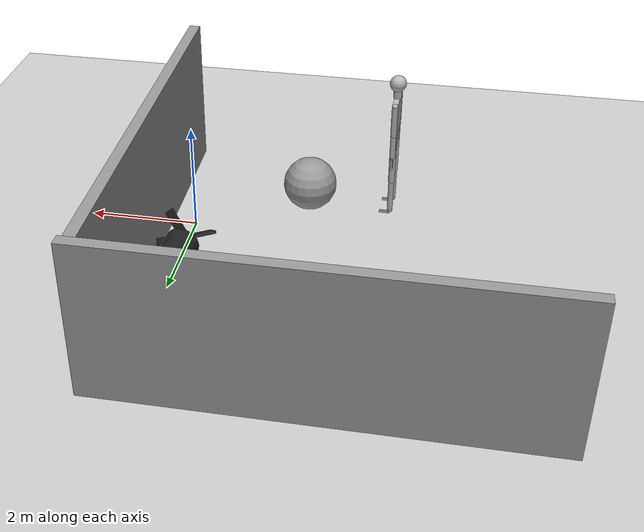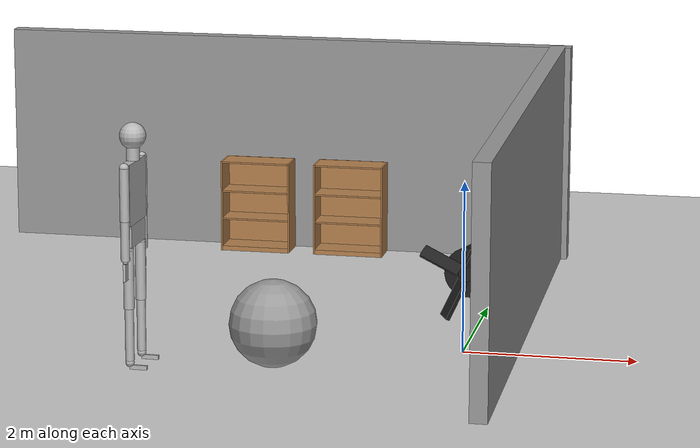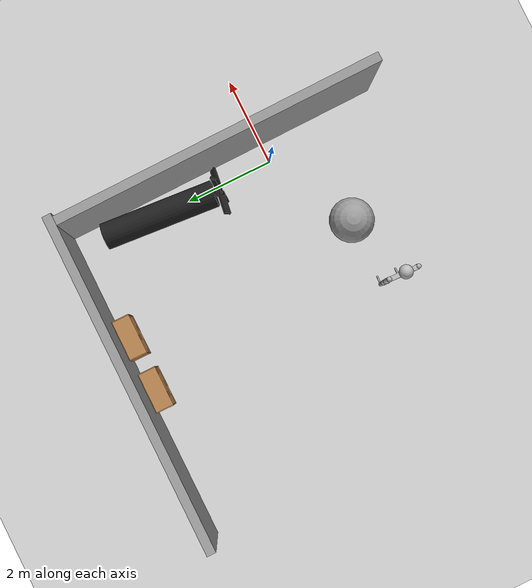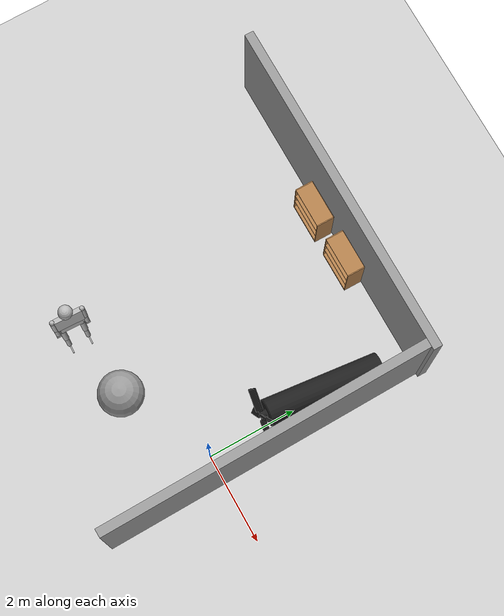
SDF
<sdf version="1.6">
 <world name="default">
  <model name="ground_plane">
   <static>1</static>
   <link name="link">
    <collision name="collision">
     <geometry><plane><normal>0 0 1</normal><size>100 100</size></plane></geometry>
     <surface>
      <contact><collide_bitmask>65535</collide_bitmask></contact>
      <friction><ode><mu>100</mu><mu2>50</mu2></ode></friction>
     </surface>
    </collision>
    <visual name="visual">
     <cast_shadows>0</cast_shadows>
     <geometry><plane><normal>0 0 1</normal><size>100 100</size></plane></geometry>
     <material>
      <script><uri>file://media/materials/scripts/gazebo.material</uri><name>Gazebo/Grey</name></script>
     </material>
    </visual>
   </link>
  </model>
  <model name="grey_wall">
   <static>1</static>
   <link name="link">
    <pose>0 0 1.4 0 -0 0</pose>
    <collision name="collision"><geometry><box><size>7.5 0.2 2.8</size></box></geometry></collision>
    <visual name="visual">
     <cast_shadows>0</cast_shadows>
     <geometry><box><size>7.5 0.2 2.8</size></box></geometry>
     <material>
      <script>
       <uri>model://grey_wall/materials/scripts</uri>
       <uri>model://grey_wall/materials/textures</uri>
       <name>vrc/grey_wall</name>
      </script>
     </material>
    </visual>
   </link>
   <pose>-3.09863 4.75132 0 0 -0 0</pose>
  </model>
  <model name="grey_wall_0_clone">
   <static>1</static>
   <link name="link">
    <pose>0 0 1.4 0 -0 0</pose>
    <collision name="collision"><geometry><box><size>7.5 0.2 2.8</size></box></geometry></collision>
    <visual name="visual">
     <cast_shadows>0</cast_shadows>
     <geometry><box><size>7.5 0.2 2.8</size></box></geometry>
     <material>
      <script>
       <uri>model://grey_wall/materials/scripts</uri>
       <uri>model://grey_wall/materials/textures</uri>
       <name>vrc/grey_wall</name>
      </script>
     </material>
    </visual>
   </link>
   <pose>0.526199 1.0684 0 0 0 -1.55661</pose>
  </model>
  <model name="bookshelf_1">
   <static>1</static>
   <link name="link">
    <inertial><mass>1</mass></inertial>
    <collision name="back">
     <pose>0 0.005 0.6 0 -0 0</pose>
     <geometry><box><size>0.9 0.01 1.2</size></box></geometry>
    </collision>
    <visual name="visual1">
     <pose>0 0.005 0.6 0 -0 0</pose>
     <geometry><box><size>0.9 0.01 1.2</size></box></geometry>
     <material>
      <script><uri>file://media/materials/scripts/gazebo.material</uri><name>Gazebo/Wood</name></script>
     </material>
    </visual>
    <collision name="left_side">
     <pose>0.45 -0.195 0.6 0 -0 0</pose>
     <geometry><box><size>0.02 0.4 1.2</size></box></geometry>
    </collision>
    <visual name="visual2">
     <pose>0.45 -0.195 0.6 0 -0 0</pose>
     <geometry><box><size>0.02 0.4 1.2</size></box></geometry>
     <material>
      <script><uri>file://media/materials/scripts/gazebo.material</uri><name>Gazebo/Wood</name></script>
     </material>
    </visual>
    <collision name="right_side">
     <pose>-0.45 -0.195 0.6 0 -0 0</pose>
     <geometry><box><size>0.02 0.4 1.2</size></box></geometry>
    </collision>
    <visual name="visual3">
     <pose>-0.45 -0.195 0.6 0 -0 0</pose>
     <geometry><box><size>0.02 0.4 1.2</size></box></geometry>
     <material>
      <script><uri>file://media/materials/scripts/gazebo.material</uri><name>Gazebo/Wood</name></script>
     </material>
    </visual>
    <collision name="bottom">
     <pose>0 -0.195 0.03 0 -0 0</pose>
     <geometry><box><size>0.88 0.4 0.06</size></box></geometry>
    </collision>
    <visual name="visual4">
     <pose>0 -0.195 0.03 0 -0 0</pose>
     <geometry><box><size>0.88 0.4 0.06</size></box></geometry>
     <material>
      <script><uri>file://media/materials/scripts/gazebo.material</uri><name>Gazebo/Wood</name></script>
     </material>
    </visual>
    <collision name="top">
     <pose>0 -0.195 1.19 0 -0 0</pose>
     <geometry><box><size>0.88 0.4 0.02</size></box></geometry>
    </collision>
    <visual name="visual5">
     <pose>0 -0.195 1.19 0 -0 0</pose>
     <geometry><box><size>0.88 0.4 0.02</size></box></geometry>
     <material>
      <script><uri>file://media/materials/scripts/gazebo.material</uri><name>Gazebo/Wood</name></script>
     </material>
    </visual>
    <collision name="low_shelf">
     <pose>0 -0.195 0.43 0 -0 0</pose>
     <geometry><box><size>0.88 0.4 0.02</size></box></geometry>
    </collision>
    <visual name="visual6">
     <pose>0 -0.195 0.43 0 -0 0</pose>
     <geometry><box><size>0.88 0.4 0.02</size></box></geometry>
     <material>
      <script><uri>file://media/materials/scripts/gazebo.material</uri><name>Gazebo/Wood</name></script>
     </material>
    </visual>
    <collision name="high_shelf">
     <pose>0 -0.195 0.8 0 -0 0</pose>
     <geometry><box><size>0.88 0.4 0.02</size></box></geometry>
    </collision>
    <visual name="visual7">
     <pose>0 -0.195 0.8 0 -0 0</pose>
     <geometry><box><size>0.88 0.4 0.02</size></box></geometry>
     <material>
      <script><uri>file://media/materials/scripts/gazebo.material</uri><name>Gazebo/Wood</name></script>
     </material>
    </visual>
   </link>
   <pose>-3.43568 4.62036 0 0 -0 0</pose>
  </model>
  <model name="bookshelf_2">
   <static>1</static>
   <link name="link">
    <inertial><mass>1</mass></inertial>
    <collision name="back">
     <pose>0 0.005 0.6 0 -0 0</pose>
     <geometry><box><size>0.9 0.01 1.2</size></box></geometry>
    </collision>
    <visual name="visual1">
     <pose>0 0.005 0.6 0 -0 0</pose>
     <geometry><box><size>0.9 0.01 1.2</size></box></geometry>
     <material>
      <script><uri>file://media/materials/scripts/gazebo.material</uri><name>Gazebo/Wood</name></script>
     </material>
    </visual>
    <collision name="left_side">
     <pose>0.45 -0.195 0.6 0 -0 0</pose>
     <geometry><box><size>0.02 0.4 1.2</size></box></geometry>
    </collision>
    <visual name="visual2">
     <pose>0.45 -0.195 0.6 0 -0 0</pose>
     <geometry><box><size>0.02 0.4 1.2</size></box></geometry>
     <material>
      <script><uri>file://media/materials/scripts/gazebo.material</uri><name>Gazebo/Wood</name></script>
     </material>
    </visual>
    <collision name="right_side">
     <pose>-0.45 -0.195 0.6 0 -0 0</pose>
     <geometry><box><size>0.02 0.4 1.2</size></box></geometry>
    </collision>
    <visual name="visual3">
     <pose>-0.45 -0.195 0.6 0 -0 0</pose>
     <geometry><box><size>0.02 0.4 1.2</size></box></geometry>
     <material>
      <script><uri>file://media/materials/scripts/gazebo.material</uri><name>Gazebo/Wood</name></script>
     </material>
    </visual>
    <collision name="bottom">
     <pose>0 -0.195 0.03 0 -0 0</pose>
     <geometry><box><size>0.88 0.4 0.06</size></box></geometry>
    </collision>
    <visual name="visual4">
     <pose>0 -0.195 0.03 0 -0 0</pose>
     <geometry><box><size>0.88 0.4 0.06</size></box></geometry>
     <material>
      <script><uri>file://media/materials/scripts/gazebo.material</uri><name>Gazebo/Wood</name></script>
     </material>
    </visual>
    <collision name="top">
     <pose>0 -0.195 1.19 0 -0 0</pose>
     <geometry><box><size>0.88 0.4 0.02</size></box></geometry>
    </collision>
    <visual name="visual5">
     <pose>0 -0.195 1.19 0 -0 0</pose>
     <geometry><box><size>0.88 0.4 0.02</size></box></geometry>
     <material>
      <script><uri>file://media/materials/scripts/gazebo.material</uri><name>Gazebo/Wood</name></script>
     </material>
    </visual>
    <collision name="low_shelf">
     <pose>0 -0.195 0.43 0 -0 0</pose>
     <geometry><box><size>0.88 0.4 0.02</size></box></geometry>
    </collision>
    <visual name="visual6">
     <pose>0 -0.195 0.43 0 -0 0</pose>
     <geometry><box><size>0.88 0.4 0.02</size></box></geometry>
     <material>
      <script><uri>file://media/materials/scripts/gazebo.material</uri><name>Gazebo/Wood</name></script>
     </material>
    </visual>
    <collision name="high_shelf">
     <pose>0 -0.195 0.8 0 -0 0</pose>
     <geometry><box><size>0.88 0.4 0.02</size></box></geometry>
    </collision>
    <visual name="visual7">
     <pose>0 -0.195 0.8 0 -0 0</pose>
     <geometry><box><size>0.88 0.4 0.02</size></box></geometry>
     <material>
      <script><uri>file://media/materials/scripts/gazebo.material</uri><name>Gazebo/Wood</name></script>
     </material>
    </visual>
   </link>
   <pose>-2.19279 4.63709 0 0 -0 0</pose>
  </model>
  <model name="submarine_sinking">
   <pose>-0.136435 1.6489 0.553542 1.45318 0.417134 -0.14211</pose>
   <link name="body">
    <pose>0 0 -1.07935 0 -0 0</pose>
    <inertial>
     <mass>1102.7</mass>
     <inertia><ixx>645.998</ixx><ixy>0</ixy><ixz>0</ixz><iyy>645.998</iyy><iyz>0</iyz><izz>49.6215</izz></inertia>
    </inertial>
    <visual name="body_visual">
     <geometry><cylinder><radius>0.3</radius><length>2.6</length></cylinder></geometry>
     <material>
      <script><uri>file://media/materials/scripts/gazebo.material</uri><name>Gazebo/Black</name></script>
     </material>
    </visual>
    <collision name="body_collision">
     <geometry><cylinder><radius>0.3</radius><length>2.6</length></cylinder></geometry>
    </collision>
    <visual name="spacer_visual">
     <pose>0 0 1.37855 0 -0 0</pose>
     <geometry><cylinder><radius>0.0933402</radius><length>0.127211</length></cylinder></geometry>
     <material>
      <script><uri>file://media/materials/scripts/gazebo.material</uri><name>Gazebo/Black</name></script>
     </material>
    </visual>
   </link>
   <link name="propeller">
    <pose>0 0 0.3455 3.14159 -0 0</pose>
    <inertial>
     <mass>25.2312</mass>
     <inertia><ixx>0.531907</ixx><ixy>0</ixy><ixz>0</ixz><iyy>0.531907</iyy><iyz>0</iyz><izz>1.0513</izz></inertia>
    </inertial>
    <visual name="blade1_visual">
     <pose>0.34334 0 0 0.785398 -0 0</pose>
     <geometry><box><size>0.5 0.154178 0.05455</size></box></geometry>
     <material>
      <script><uri>file://media/materials/scripts/gazebo.material</uri><name>Gazebo/Black</name></script>
     </material>
    </visual>
    <collision name="blade1_collision">
     <pose>0.34334 0 0 0.785398 -0 0</pose>
     <geometry><box><size>0.5 0.154178 0.05455</size></box></geometry>
    </collision>
    <visual name="blade2_visual">
     <pose>0 0.34334 0 0.785398 0 1.5708</pose>
     <geometry><box><size>0.5 0.154178 0.05455</size></box></geometry>
     <material>
      <script><uri>file://media/materials/scripts/gazebo.material</uri><name>Gazebo/Black</name></script>
     </material>
    </visual>
    <collision name="blade2_collision">
     <pose>0 0.34334 0 0.785398 0 1.5708</pose>
     <geometry><box><size>0.5 0.154178 0.05455</size></box></geometry>
    </collision>
    <visual name="blade3_visual">
     <pose>-0.34334 -0 0 -0.785398 0 0</pose>
     <geometry><box><size>0.5 0.154178 0.05455</size></box></geometry>
     <material>
      <script><uri>file://media/materials/scripts/gazebo.material</uri><name>Gazebo/Black</name></script>
     </material>
    </visual>
    <collision name="blade3_collision">
     <pose>-0.34334 -0 0 -0.785398 0 0</pose>
     <geometry><box><size>0.5 0.154178 0.05455</size></box></geometry>
    </collision>
    <visual name="blade4_visual">
     <pose>-0 -0.34334 0 -0.785398 -0 1.5708</pose>
     <geometry><box><size>0.5 0.154178 0.05455</size></box></geometry>
     <material>
      <script><uri>file://media/materials/scripts/gazebo.material</uri><name>Gazebo/Black</name></script>
     </material>
    </visual>
    <collision name="blade4_collision">
     <pose>-0 -0.34334 0 -0.785398 -0 1.5708</pose>
     <geometry><box><size>0.5 0.154178 0.05455</size></box></geometry>
    </collision>
   </link>
   <joint name="spinning_joint" type="revolute">
    <parent>body</parent>
    <child>propeller</child>
    <axis>
     <xyz>0 0 1</xyz>
     <use_parent_model_frame>1</use_parent_model_frame>
     <limit><lower>-1e+12</lower><upper>1e+12</upper><effort>-1</effort><velocity>-1</velocity></limit>
     <dynamics><spring_reference>0</spring_reference><spring_stiffness>0</spring_stiffness></dynamics>
    </axis>
   </joint>
   <plugin name="buoyancy" filename="libBuoyancyPlugin.so"><fluid_density>999.1026</fluid_density></plugin>
  </model>
  <model name="unit_sphere">
   <pose>-2.0015 -1.00439 0.5 0 -0 0</pose>
   <link name="link">
    <inertial>
     <mass>1</mass>
     <inertia><ixx>0.1</ixx><ixy>0</ixy><ixz>0</ixz><iyy>0.1</iyy><iyz>0</iyz><izz>0.1</izz></inertia>
    </inertial>
    <collision name="collision"><geometry><sphere><radius>0.5</radius></sphere></geometry></collision>
    <visual name="visual">
     <geometry><sphere><radius>0.5</radius></sphere></geometry>
     <material>
      <script><name>Gazebo/Grey</name><uri>file://media/materials/scripts/gazebo.material</uri></script>
     </material>
    </visual>
   </link>
  </model>
  <model name="ragdoll">
   <pose>-3.54136 -1.22658 1.39997 4e-06 -0.000213 -0.03309</pose>
   <link name="hip">
    <inertial>
     <inertia><ixx>0.1</ixx><ixy>0</ixy><ixz>0</ixz><iyy>0.1</iyy><iyz>0</iyz><izz>0.1</izz></inertia>
     <mass>10</mass>
    </inertial>
    <collision name="hip_geom">
     <pose>0 0 0.125 0 -0 0</pose>
     <geometry><box><size>0.1 0.5 0.25</size></box></geometry>
     <surface>
      <friction><ode><mu>-1</mu><mu2>-1</mu2><fdir1>0 0 0</fdir1><slip1>0</slip1><slip2>0</slip2></ode></friction>
      <bounce><restitution_coefficient>0</restitution_coefficient><threshold>100000</threshold></bounce>
      <contact>
       <ode>
        <soft_cfm>0</soft_cfm>
        <soft_erp>0.2</soft_erp>
        <kp>1e+12</kp>
        <kd>1</kd>
        <max_vel>0</max_vel>
        <min_depth>0.001</min_depth>
       </ode>
      </contact>
     </surface>
    </collision>
    <visual name="hip_geom_visual">
     <pose>0 0 0.125 0 -0 0</pose>
     <geometry><box><size>0.1 0.5 0.25</size></box></geometry>
    </visual>
    <gravity>0</gravity>
   </link>
   <link name="l_thigh_pan">
    <pose>0 0.22 0 0 -0 0</pose>
    <inertial>
     <inertia><ixx>0.01</ixx><ixy>0</ixy><ixz>0</ixz><iyy>0.01</iyy><iyz>0</iyz><izz>0.01</izz></inertia>
     <mass>1</mass>
    </inertial>
    <collision name="l_thigh_pan_geom">
     <pose>0 0 -0.03 0 -0 0</pose>
     <geometry><sphere><radius>0.06</radius></sphere></geometry>
     <surface>
      <friction><ode><mu>-1</mu><mu2>-1</mu2><fdir1>0 0 0</fdir1><slip1>0</slip1><slip2>0</slip2></ode></friction>
      <bounce><restitution_coefficient>0</restitution_coefficient><threshold>100000</threshold></bounce>
      <contact>
       <ode>
        <soft_cfm>0</soft_cfm>
        <soft_erp>0.2</soft_erp>
        <kp>1e+12</kp>
        <kd>1</kd>
        <max_vel>0</max_vel>
        <min_depth>0.001</min_depth>
       </ode>
      </contact>
     </surface>
    </collision>
    <visual name="l_thigh_pan_geom_visual">
     <pose>0 0 -0.03 0 -0 0</pose>
     <geometry><sphere><radius>0.06</radius></sphere></geometry>
    </visual>
    <gravity>0</gravity>
   </link>
   <link name="l_thigh_lift">
    <pose>0 0.22 0 0 -0 0</pose>
    <inertial>
     <inertia><ixx>0.05</ixx><ixy>0</ixy><ixz>0</ixz><iyy>0.05</iyy><iyz>0</iyz><izz>0.05</izz></inertia>
     <mass>5</mass>
    </inertial>
    <collision name="l_thigh_lift_geom">
     <pose>0 0 -0.35 0 -0 0</pose>
     <geometry><cylinder><radius>0.06</radius><length>0.7</length></cylinder></geometry>
     <surface>
      <friction><ode><mu>-1</mu><mu2>-1</mu2><fdir1>0 0 0</fdir1><slip1>0</slip1><slip2>0</slip2></ode></friction>
      <bounce><restitution_coefficient>0</restitution_coefficient><threshold>100000</threshold></bounce>
      <contact>
       <ode>
        <soft_cfm>0</soft_cfm>
        <soft_erp>0.2</soft_erp>
        <kp>1e+12</kp>
        <kd>1</kd>
        <max_vel>0</max_vel>
        <min_depth>0.001</min_depth>
       </ode>
      </contact>
     </surface>
    </collision>
    <visual name="l_thigh_lift_geom_visual">
     <pose>0 0 -0.35 0 -0 0</pose>
     <geometry><cylinder><radius>0.06</radius><length>0.7</length></cylinder></geometry>
    </visual>
    <gravity>0</gravity>
   </link>
   <link name="l_calf">
    <pose>0 0.22 -0.7 0 -0 0</pose>
    <inertial>
     <inertia><ixx>0.02</ixx><ixy>0</ixy><ixz>0</ixz><iyy>0.02</iyy><iyz>0</iyz><izz>0.02</izz></inertia>
     <mass>2</mass>
    </inertial>
    <collision name="l_calf_geom">
     <pose>0 0 -0.3 0 -0 0</pose>
     <geometry><cylinder><radius>0.05</radius><length>0.6</length></cylinder></geometry>
     <surface>
      <friction><ode><mu>-1</mu><mu2>-1</mu2><fdir1>0 0 0</fdir1><slip1>0</slip1><slip2>0</slip2></ode></friction>
      <bounce><restitution_coefficient>0</restitution_coefficient><threshold>100000</threshold></bounce>
      <contact>
       <ode>
        <soft_cfm>0</soft_cfm>
        <soft_erp>0.2</soft_erp>
        <kp>1e+12</kp>
        <kd>1</kd>
        <max_vel>0</max_vel>
        <min_depth>0.001</min_depth>
       </ode>
      </contact>
     </surface>
    </collision>
    <visual name="l_calf_geom_visual">
     <pose>0 0 -0.3 0 -0 0</pose>
     <geometry><cylinder><radius>0.05</radius><length>0.6</length></cylinder></geometry>
    </visual>
    <gravity>0</gravity>
   </link>
   <link name="l_ankle">
    <pose>0 0.22 -1.325 0 -0 0</pose>
    <inertial>
     <inertia><ixx>0.01</ixx><ixy>0</ixy><ixz>0</ixz><iyy>0.01</iyy><iyz>0</iyz><izz>0.01</izz></inertia>
     <mass>1</mass>
    </inertial>
    <collision name="l_ankle_geom">
     <geometry><sphere><radius>0.05</radius></sphere></geometry>
     <surface>
      <friction><ode><mu>-1</mu><mu2>-1</mu2><fdir1>0 0 0</fdir1><slip1>0</slip1><slip2>0</slip2></ode></friction>
      <bounce><restitution_coefficient>0</restitution_coefficient><threshold>100000</threshold></bounce>
      <contact>
       <ode>
        <soft_cfm>0</soft_cfm>
        <soft_erp>0.2</soft_erp>
        <kp>1e+12</kp>
        <kd>1</kd>
        <max_vel>0</max_vel>
        <min_depth>0.001</min_depth>
       </ode>
      </contact>
     </surface>
    </collision>
    <visual name="l_ankle_geom_visual"><geometry><sphere><radius>0.05</radius></sphere></geometry></visual>
    <gravity>0</gravity>
   </link>
   <link name="l_foot">
    <pose>0 0.22 -1.35 0 -0 0</pose>
    <inertial>
     <pose>0.1 0 0 0 -0 0</pose>
     <inertia><ixx>0.01</ixx><ixy>0</ixy><ixz>0</ixz><iyy>0.01</iyy><iyz>0</iyz><izz>0.01</izz></inertia>
     <mass>1</mass>
    </inertial>
    <collision name="l_foot_geom">
     <pose>0.1 0 -0.025 0 -0 0</pose>
     <geometry><box><size>0.2 0.03 0.05</size></box></geometry>
     <surface>
      <friction><ode><mu>-1</mu><mu2>-1</mu2><fdir1>0 0 0</fdir1><slip1>0</slip1><slip2>0</slip2></ode></friction>
      <bounce><restitution_coefficient>0</restitution_coefficient><threshold>100000</threshold></bounce>
      <contact>
       <ode>
        <soft_cfm>0</soft_cfm>
        <soft_erp>0.2</soft_erp>
        <kp>1e+12</kp>
        <kd>1</kd>
        <max_vel>0</max_vel>
        <min_depth>0.001</min_depth>
       </ode>
      </contact>
     </surface>
    </collision>
    <visual name="l_foot_geom_visual">
     <pose>0.1 0 -0.025 0 -0 0</pose>
     <geometry><box><size>0.2 0.03 0.05</size></box></geometry>
    </visual>
   </link>
   <link name="r_thigh_pan">
    <pose>0 -0.22 0 0 -0 0</pose>
    <inertial>
     <inertia><ixx>0.01</ixx><ixy>0</ixy><ixz>0</ixz><iyy>0.01</iyy><iyz>0</iyz><izz>0.01</izz></inertia>
     <mass>1</mass>
    </inertial>
    <collision name="r_thigh_pan_geom">
     <pose>0 0 -0.03 0 -0 0</pose>
     <geometry><sphere><radius>0.06</radius></sphere></geometry>
     <surface>
      <friction><ode><mu>-1</mu><mu2>-1</mu2><fdir1>0 0 0</fdir1><slip1>0</slip1><slip2>0</slip2></ode></friction>
      <bounce><restitution_coefficient>0</restitution_coefficient><threshold>100000</threshold></bounce>
      <contact>
       <ode>
        <soft_cfm>0</soft_cfm>
        <soft_erp>0.2</soft_erp>
        <kp>1e+12</kp>
        <kd>1</kd>
        <max_vel>0</max_vel>
        <min_depth>0.001</min_depth>
       </ode>
      </contact>
     </surface>
    </collision>
    <visual name="r_thigh_pan_geom_visual">
     <pose>0 0 -0.03 0 -0 0</pose>
     <geometry><sphere><radius>0.06</radius></sphere></geometry>
    </visual>
    <gravity>0</gravity>
   </link>
   <link name="r_thigh_lift">
    <pose>0 -0.22 0 0 -0 0</pose>
    <inertial>
     <inertia><ixx>0.05</ixx><ixy>0</ixy><ixz>0</ixz><iyy>0.05</iyy><iyz>0</iyz><izz>0.05</izz></inertia>
     <mass>5</mass>
    </inertial>
    <collision name="r_thigh_lift_geom">
     <pose>0 0 -0.35 0 -0 0</pose>
     <geometry><cylinder><radius>0.06</radius><length>0.7</length></cylinder></geometry>
     <surface>
      <friction><ode><mu>-1</mu><mu2>-1</mu2><fdir1>0 0 0</fdir1><slip1>0</slip1><slip2>0</slip2></ode></friction>
      <bounce><restitution_coefficient>0</restitution_coefficient><threshold>100000</threshold></bounce>
      <contact>
       <ode>
        <soft_cfm>0</soft_cfm>
        <soft_erp>0.2</soft_erp>
        <kp>1e+12</kp>
        <kd>1</kd>
        <max_vel>0</max_vel>
        <min_depth>0.001</min_depth>
       </ode>
      </contact>
     </surface>
    </collision>
    <visual name="r_thigh_lift_geom_visual">
     <pose>0 0 -0.35 0 -0 0</pose>
     <geometry><cylinder><radius>0.06</radius><length>0.7</length></cylinder></geometry>
    </visual>
    <gravity>0</gravity>
   </link>
   <link name="r_calf">
    <pose>0 -0.22 -0.7 0 -0 0</pose>
    <inertial>
     <inertia><ixx>0.02</ixx><ixy>0</ixy><ixz>0</ixz><iyy>0.02</iyy><iyz>0</iyz><izz>0.02</izz></inertia>
     <mass>2</mass>
    </inertial>
    <collision name="r_calf_geom">
     <pose>0 0 -0.3 0 -0 0</pose>
     <geometry><cylinder><radius>0.05</radius><length>0.6</length></cylinder></geometry>
     <surface>
      <friction><ode><mu>-1</mu><mu2>-1</mu2><fdir1>0 0 0</fdir1><slip1>0</slip1><slip2>0</slip2></ode></friction>
      <bounce><restitution_coefficient>0</restitution_coefficient><threshold>100000</threshold></bounce>
      <contact>
       <ode>
        <soft_cfm>0</soft_cfm>
        <soft_erp>0.2</soft_erp>
        <kp>1e+12</kp>
        <kd>1</kd>
        <max_vel>0</max_vel>
        <min_depth>0.001</min_depth>
       </ode>
      </contact>
     </surface>
    </collision>
    <visual name="r_calf_geom_visual">
     <pose>0 0 -0.3 0 -0 0</pose>
     <geometry><cylinder><radius>0.05</radius><length>0.6</length></cylinder></geometry>
    </visual>
    <gravity>0</gravity>
   </link>
   <link name="r_ankle">
    <pose>0 -0.22 -1.325 0 -0 0</pose>
    <inertial>
     <inertia><ixx>0.01</ixx><ixy>0</ixy><ixz>0</ixz><iyy>0.01</iyy><iyz>0</iyz><izz>0.01</izz></inertia>
     <mass>1</mass>
    </inertial>
    <collision name="r_ankle_geom">
     <geometry><sphere><radius>0.05</radius></sphere></geometry>
     <surface>
      <friction><ode><mu>-1</mu><mu2>-1</mu2><fdir1>0 0 0</fdir1><slip1>0</slip1><slip2>0</slip2></ode></friction>
      <bounce><restitution_coefficient>0</restitution_coefficient><threshold>100000</threshold></bounce>
      <contact>
       <ode>
        <soft_cfm>0</soft_cfm>
        <soft_erp>0.2</soft_erp>
        <kp>1e+12</kp>
        <kd>1</kd>
        <max_vel>0</max_vel>
        <min_depth>0.001</min_depth>
       </ode>
      </contact>
     </surface>
    </collision>
    <visual name="r_ankle_geom_visual"><geometry><sphere><radius>0.05</radius></sphere></geometry></visual>
    <gravity>0</gravity>
   </link>
   <link name="r_foot">
    <pose>0 -0.22 -1.35 0 -0 0</pose>
    <inertial>
     <pose>0.1 0 0 0 -0 0</pose>
     <inertia><ixx>0.01</ixx><ixy>0</ixy><ixz>0</ixz><iyy>0.01</iyy><iyz>0</iyz><izz>0.01</izz></inertia>
     <mass>1</mass>
    </inertial>
    <collision name="r_foot_geom">
     <pose>0.1 0 -0.025 0 -0 0</pose>
     <geometry><box><size>0.2 0.03 0.05</size></box></geometry>
     <surface>
      <friction><ode><mu>-1</mu><mu2>-1</mu2><fdir1>0 0 0</fdir1><slip1>0</slip1><slip2>0</slip2></ode></friction>
      <bounce><restitution_coefficient>0</restitution_coefficient><threshold>100000</threshold></bounce>
      <contact>
       <ode>
        <soft_cfm>0</soft_cfm>
        <soft_erp>0.2</soft_erp>
        <kp>1e+12</kp>
        <kd>1</kd>
        <max_vel>0</max_vel>
        <min_depth>0.001</min_depth>
       </ode>
      </contact>
     </surface>
    </collision>
    <visual name="r_foot_geom_visual">
     <pose>0.1 0 -0.025 0 -0 0</pose>
     <geometry><box><size>0.2 0.03 0.05</size></box></geometry>
    </visual>
   </link>
   <link name="torso">
    <pose>0 0 0.25 0 -0 0</pose>
    <inertial>
     <inertia><ixx>0.3</ixx><ixy>0</ixy><ixz>0</ixz><iyy>0.3</iyy><iyz>0</iyz><izz>0.3</izz></inertia>
     <mass>30</mass>
    </inertial>
    <collision name="torso_geom">
     <pose>0 0 0.35 0 -0 0</pose>
     <geometry><box><size>0.1 0.6 0.7</size></box></geometry>
     <surface>
      <friction><ode><mu>-1</mu><mu2>-1</mu2><fdir1>0 0 0</fdir1><slip1>0</slip1><slip2>0</slip2></ode></friction>
      <bounce><restitution_coefficient>0</restitution_coefficient><threshold>100000</threshold></bounce>
      <contact>
       <ode>
        <soft_cfm>0</soft_cfm>
        <soft_erp>0.2</soft_erp>
        <kp>1e+12</kp>
        <kd>1</kd>
        <max_vel>0</max_vel>
        <min_depth>0.001</min_depth>
       </ode>
      </contact>
     </surface>
    </collision>
    <visual name="torso_geom_visual">
     <pose>0 0 0.35 0 -0 0</pose>
     <geometry><box><size>0.1 0.6 0.7</size></box></geometry>
    </visual>
    <gravity>0</gravity>
   </link>
   <link name="l_shoulder">
    <pose>0 0.3275 0.9225 0 -0 0</pose>
    <inertial>
     <inertia><ixx>0.01</ixx><ixy>0</ixy><ixz>0</ixz><iyy>0.01</iyy><iyz>0</iyz><izz>0.01</izz></inertia>
     <mass>1</mass>
    </inertial>
    <collision name="l_shoulder_geom">
     <geometry><sphere><radius>0.055</radius></sphere></geometry>
     <surface>
      <friction><ode><mu>-1</mu><mu2>-1</mu2><fdir1>0 0 0</fdir1><slip1>0</slip1><slip2>0</slip2></ode></friction>
      <bounce><restitution_coefficient>0</restitution_coefficient><threshold>100000</threshold></bounce>
      <contact>
       <ode>
        <soft_cfm>0</soft_cfm>
        <soft_erp>0.2</soft_erp>
        <kp>1e+12</kp>
        <kd>1</kd>
        <max_vel>0</max_vel>
        <min_depth>0.001</min_depth>
       </ode>
      </contact>
     </surface>
    </collision>
    <visual name="l_shoulder_geom_visual"><geometry><sphere><radius>0.055</radius></sphere></geometry></visual>
    <gravity>0</gravity>
   </link>
   <link name="l_upper_arm">
    <pose>0 0.3275 0.9225 0 -0 0</pose>
    <inertial>
     <inertia><ixx>0.02</ixx><ixy>0</ixy><ixz>0</ixz><iyy>0.02</iyy><iyz>0</iyz><izz>0.02</izz></inertia>
     <mass>2</mass>
    </inertial>
    <collision name="l_upper_arm_geom">
     <pose>0 0 -0.3 0 -0 0</pose>
     <geometry><cylinder><radius>0.055</radius><length>0.6</length></cylinder></geometry>
     <surface>
      <friction><ode><mu>-1</mu><mu2>-1</mu2><fdir1>0 0 0</fdir1><slip1>0</slip1><slip2>0</slip2></ode></friction>
      <bounce><restitution_coefficient>0</restitution_coefficient><threshold>100000</threshold></bounce>
      <contact>
       <ode>
        <soft_cfm>0</soft_cfm>
        <soft_erp>0.2</soft_erp>
        <kp>1e+12</kp>
        <kd>1</kd>
        <max_vel>0</max_vel>
        <min_depth>0.001</min_depth>
       </ode>
      </contact>
     </surface>
    </collision>
    <visual name="l_upper_arm_geom_visual">
     <pose>0 0 -0.3 0 -0 0</pose>
     <geometry><cylinder><radius>0.055</radius><length>0.6</length></cylinder></geometry>
    </visual>
    <gravity>0</gravity>
   </link>
   <link name="l_forearm">
    <pose>0 0.3275 0.3225 0 -0 0</pose>
    <inertial>
     <inertia><ixx>0.01</ixx><ixy>0</ixy><ixz>0</ixz><iyy>0.01</iyy><iyz>0</iyz><izz>0.01</izz></inertia>
     <mass>1</mass>
    </inertial>
    <collision name="l_forearm_geom">
     <pose>0 0 -0.225 0 -0 0</pose>
     <geometry><cylinder><radius>0.05</radius><length>0.45</length></cylinder></geometry>
     <surface>
      <friction><ode><mu>-1</mu><mu2>-1</mu2><fdir1>0 0 0</fdir1><slip1>0</slip1><slip2>0</slip2></ode></friction>
      <bounce><restitution_coefficient>0</restitution_coefficient><threshold>100000</threshold></bounce>
      <contact>
       <ode>
        <soft_cfm>0</soft_cfm>
        <soft_erp>0.2</soft_erp>
        <kp>1e+12</kp>
        <kd>1</kd>
        <max_vel>0</max_vel>
        <min_depth>0.001</min_depth>
       </ode>
      </contact>
     </surface>
    </collision>
    <visual name="l_forearm_geom_visual">
     <pose>0 0 -0.225 0 -0 0</pose>
     <geometry><cylinder><radius>0.05</radius><length>0.45</length></cylinder></geometry>
    </visual>
    <gravity>0</gravity>
   </link>
   <link name="l_wrist">
    <pose>0 0.3275 -0.1425 0 -0 0</pose>
    <inertial>
     <inertia><ixx>0.01</ixx><ixy>0</ixy><ixz>0</ixz><iyy>0.01</iyy><iyz>0</iyz><izz>0.01</izz></inertia>
     <mass>1</mass>
    </inertial>
    <collision name="l_wrist_geom">
     <geometry><sphere><radius>0.03</radius></sphere></geometry>
     <surface>
      <friction><ode><mu>-1</mu><mu2>-1</mu2><fdir1>0 0 0</fdir1><slip1>0</slip1><slip2>0</slip2></ode></friction>
      <bounce><restitution_coefficient>0</restitution_coefficient><threshold>100000</threshold></bounce>
      <contact>
       <ode>
        <soft_cfm>0</soft_cfm>
        <soft_erp>0.2</soft_erp>
        <kp>1e+12</kp>
        <kd>1</kd>
        <max_vel>0</max_vel>
        <min_depth>0.001</min_depth>
       </ode>
      </contact>
     </surface>
    </collision>
    <visual name="l_wrist_geom_visual"><geometry><sphere><radius>0.03</radius></sphere></geometry></visual>
    <gravity>0</gravity>
   </link>
   <link name="l_hand">
    <pose>0 0.3275 -0.1575 0 -0 0</pose>
    <inertial>
     <inertia><ixx>0.01</ixx><ixy>0</ixy><ixz>0</ixz><iyy>0.01</iyy><iyz>0</iyz><izz>0.01</izz></inertia>
     <mass>1</mass>
    </inertial>
    <collision name="l_hand_geom">
     <pose>0 0 -0.1 0 -0 0</pose>
     <geometry><box><size>0.03 0.1 0.2</size></box></geometry>
     <surface>
      <friction><ode><mu>-1</mu><mu2>-1</mu2><fdir1>0 0 0</fdir1><slip1>0</slip1><slip2>0</slip2></ode></friction>
      <bounce><restitution_coefficient>0</restitution_coefficient><threshold>100000</threshold></bounce>
      <contact>
       <ode>
        <soft_cfm>0</soft_cfm>
        <soft_erp>0.2</soft_erp>
        <kp>1e+12</kp>
        <kd>1</kd>
        <max_vel>0</max_vel>
        <min_depth>0.001</min_depth>
       </ode>
      </contact>
     </surface>
    </collision>
    <visual name="l_hand_geom_visual">
     <pose>0 0 -0.1 0 -0 0</pose>
     <geometry><box><size>0.03 0.1 0.2</size></box></geometry>
    </visual>
    <gravity>0</gravity>
   </link>
   <link name="neck">
    <pose>0 0 0.95 0 -0 0</pose>
    <inertial>
     <inertia><ixx>0.01</ixx><ixy>0</ixy><ixz>0</ixz><iyy>0.01</iyy><iyz>0</iyz><izz>0.01</izz></inertia>
     <mass>1</mass>
    </inertial>
    <collision name="neck_geom">
     <pose>0 0 0.1 0 -0 0</pose>
     <geometry><cylinder><radius>0.075</radius><length>0.2</length></cylinder></geometry>
     <surface>
      <friction><ode><mu>-1</mu><mu2>-1</mu2><fdir1>0 0 0</fdir1><slip1>0</slip1><slip2>0</slip2></ode></friction>
      <bounce><restitution_coefficient>0</restitution_coefficient><threshold>100000</threshold></bounce>
      <contact>
       <ode>
        <soft_cfm>0</soft_cfm>
        <soft_erp>0.2</soft_erp>
        <kp>1e+12</kp>
        <kd>1</kd>
        <max_vel>0</max_vel>
        <min_depth>0.001</min_depth>
       </ode>
      </contact>
     </surface>
    </collision>
    <visual name="neck_geom_visual">
     <pose>0 0 0.1 0 -0 0</pose>
     <geometry><cylinder><radius>0.075</radius><length>0.2</length></cylinder></geometry>
    </visual>
    <gravity>0</gravity>
   </link>
   <link name="head">
    <pose>0 0 1.225 0 -0 0</pose>
    <inertial>
     <inertia><ixx>0.1</ixx><ixy>0</ixy><ixz>0</ixz><iyy>0.1</iyy><iyz>0</iyz><izz>0.1</izz></inertia>
     <mass>10</mass>
    </inertial>
    <collision name="head_geom">
     <geometry><sphere><radius>0.15</radius></sphere></geometry>
     <surface>
      <friction><ode><mu>-1</mu><mu2>-1</mu2><fdir1>0 0 0</fdir1><slip1>0</slip1><slip2>0</slip2></ode></friction>
      <bounce><restitution_coefficient>0</restitution_coefficient><threshold>100000</threshold></bounce>
      <contact>
       <ode>
        <soft_cfm>0</soft_cfm>
        <soft_erp>0.2</soft_erp>
        <kp>1e+12</kp>
        <kd>1</kd>
        <max_vel>0</max_vel>
        <min_depth>0.001</min_depth>
       </ode>
      </contact>
     </surface>
    </collision>
    <visual name="head_geom_visual"><geometry><sphere><radius>0.15</radius></sphere></geometry></visual>
    <gravity>0</gravity>
   </link>
   <link name="r_shoulder">
    <pose>0 -0.3275 0.9225 0 -0 0</pose>
    <inertial>
     <inertia><ixx>0.01</ixx><ixy>0</ixy><ixz>0</ixz><iyy>0.01</iyy><iyz>0</iyz><izz>0.01</izz></inertia>
     <mass>1</mass>
    </inertial>
    <collision name="r_shoulder_geom">
     <geometry><sphere><radius>0.055</radius></sphere></geometry>
     <surface>
      <friction><ode><mu>-1</mu><mu2>-1</mu2><fdir1>0 0 0</fdir1><slip1>0</slip1><slip2>0</slip2></ode></friction>
      <bounce><restitution_coefficient>0</restitution_coefficient><threshold>100000</threshold></bounce>
      <contact>
       <ode>
        <soft_cfm>0</soft_cfm>
        <soft_erp>0.2</soft_erp>
        <kp>1e+12</kp>
        <kd>1</kd>
        <max_vel>0</max_vel>
        <min_depth>0.001</min_depth>
       </ode>
      </contact>
     </surface>
    </collision>
    <visual name="r_shoulder_geom_visual"><geometry><sphere><radius>0.055</radius></sphere></geometry></visual>
    <gravity>0</gravity>
   </link>
   <link name="r_upper_arm">
    <pose>0 -0.3275 0.9225 0 -0 0</pose>
    <inertial>
     <inertia><ixx>0.02</ixx><ixy>0</ixy><ixz>0</ixz><iyy>0.02</iyy><iyz>0</iyz><izz>0.02</izz></inertia>
     <mass>2</mass>
    </inertial>
    <collision name="r_upper_arm_geom">
     <pose>0 0 -0.3 0 -0 0</pose>
     <geometry><cylinder><radius>0.055</radius><length>0.6</length></cylinder></geometry>
     <surface>
      <friction><ode><mu>-1</mu><mu2>-1</mu2><fdir1>0 0 0</fdir1><slip1>0</slip1><slip2>0</slip2></ode></friction>
      <bounce><restitution_coefficient>0</restitution_coefficient><threshold>100000</threshold></bounce>
      <contact>
       <ode>
        <soft_cfm>0</soft_cfm>
        <soft_erp>0.2</soft_erp>
        <kp>1e+12</kp>
        <kd>1</kd>
        <max_vel>0</max_vel>
        <min_depth>0.001</min_depth>
       </ode>
      </contact>
     </surface>
    </collision>
    <visual name="r_upper_arm_geom_visual">
     <pose>0 0 -0.3 0 -0 0</pose>
     <geometry><cylinder><radius>0.055</radius><length>0.6</length></cylinder></geometry>
    </visual>
    <gravity>0</gravity>
   </link>
   <link name="r_forearm">
    <pose>0 -0.3275 0.3225 0 -0 0</pose>
    <inertial>
     <inertia><ixx>0.01</ixx><ixy>0</ixy><ixz>0</ixz><iyy>0.01</iyy><iyz>0</iyz><izz>0.01</izz></inertia>
     <mass>1</mass>
    </inertial>
    <collision name="r_forearm_geom">
     <pose>0 0 -0.225 0 -0 0</pose>
     <geometry><cylinder><radius>0.05</radius><length>0.45</length></cylinder></geometry>
     <surface>
      <friction><ode><mu>-1</mu><mu2>-1</mu2><fdir1>0 0 0</fdir1><slip1>0</slip1><slip2>0</slip2></ode></friction>
      <bounce><restitution_coefficient>0</restitution_coefficient><threshold>100000</threshold></bounce>
      <contact>
       <ode>
        <soft_cfm>0</soft_cfm>
        <soft_erp>0.2</soft_erp>
        <kp>1e+12</kp>
        <kd>1</kd>
        <max_vel>0</max_vel>
        <min_depth>0.001</min_depth>
       </ode>
      </contact>
     </surface>
    </collision>
    <visual name="r_forearm_geom_visual">
     <pose>0 0 -0.225 0 -0 0</pose>
     <geometry><cylinder><radius>0.05</radius><length>0.45</length></cylinder></geometry>
    </visual>
    <gravity>0</gravity>
   </link>
   <link name="r_wrist">
    <pose>0 -0.3275 -0.1425 0 -0 0</pose>
    <inertial>
     <inertia><ixx>0.01</ixx><ixy>0</ixy><ixz>0</ixz><iyy>0.01</iyy><iyz>0</iyz><izz>0.01</izz></inertia>
     <mass>1</mass>
    </inertial>
    <collision name="r_wrist_geom">
     <geometry><sphere><radius>0.03</radius></sphere></geometry>
     <surface>
      <friction><ode><mu>-1</mu><mu2>-1</mu2><fdir1>0 0 0</fdir1><slip1>0</slip1><slip2>0</slip2></ode></friction>
      <bounce><restitution_coefficient>0</restitution_coefficient><threshold>100000</threshold></bounce>
      <contact>
       <ode>
        <soft_cfm>0</soft_cfm>
        <soft_erp>0.2</soft_erp>
        <kp>1e+12</kp>
        <kd>1</kd>
        <max_vel>0</max_vel>
        <min_depth>0.001</min_depth>
       </ode>
      </contact>
     </surface>
    </collision>
    <visual name="r_wrist_geom_visual"><geometry><sphere><radius>0.03</radius></sphere></geometry></visual>
    <gravity>0</gravity>
   </link>
   <link name="r_hand">
    <pose>0 -0.3275 -0.1575 0 -0 0</pose>
    <inertial>
     <inertia><ixx>0.01</ixx><ixy>0</ixy><ixz>0</ixz><iyy>0.01</iyy><iyz>0</iyz><izz>0.01</izz></inertia>
     <mass>1</mass>
    </inertial>
    <collision name="r_hand_geom">
     <pose>0 0 -0.1 0 -0 0</pose>
     <geometry><box><size>0.03 0.1 0.2</size></box></geometry>
     <surface>
      <friction><ode><mu>-1</mu><mu2>-1</mu2><fdir1>0 0 0</fdir1><slip1>0</slip1><slip2>0</slip2></ode></friction>
      <bounce><restitution_coefficient>0</restitution_coefficient><threshold>100000</threshold></bounce>
      <contact>
       <ode>
        <soft_cfm>0</soft_cfm>
        <soft_erp>0.2</soft_erp>
        <kp>1e+12</kp>
        <kd>1</kd>
        <max_vel>0</max_vel>
        <min_depth>0.001</min_depth>
       </ode>
      </contact>
     </surface>
    </collision>
    <visual name="r_hand_geom_visual">
     <pose>0 0 -0.1 0 -0 0</pose>
     <geometry><box><size>0.03 0.1 0.2</size></box></geometry>
    </visual>
    <gravity>0</gravity>
   </link>
   <joint name="l_thigh_pan_joint" type="revolute">
    <parent>hip</parent>
    <child>l_thigh_pan</child>
    <axis>
     <dynamics>
      <damping>0</damping>
      <friction>0</friction>
      <spring_reference>0</spring_reference>
      <spring_stiffness>0</spring_stiffness>
     </dynamics>
     <limit><lower>-1.5708</lower><upper>1.5708</upper><effort>0</effort><velocity>0</velocity></limit>
     <xyz>0 0 1</xyz>
     <use_parent_model_frame>1</use_parent_model_frame>
    </axis>
   </joint>
   <joint name="l_thigh_lift_joint" type="revolute">
    <parent>l_thigh_pan</parent>
    <child>l_thigh_lift</child>
    <axis>
     <dynamics>
      <damping>0</damping>
      <friction>0</friction>
      <spring_reference>0</spring_reference>
      <spring_stiffness>0</spring_stiffness>
     </dynamics>
     <limit><lower>-1.5708</lower><upper>1.5708</upper><effort>0</effort><velocity>0</velocity></limit>
     <xyz>0 1 0</xyz>
     <use_parent_model_frame>1</use_parent_model_frame>
    </axis>
   </joint>
   <joint name="l_calf_joint" type="revolute">
    <parent>l_thigh_lift</parent>
    <child>l_calf</child>
    <axis>
     <dynamics>
      <damping>0</damping>
      <friction>0</friction>
      <spring_reference>0</spring_reference>
      <spring_stiffness>0</spring_stiffness>
     </dynamics>
     <limit><lower>-1.5708</lower><upper>1.5708</upper><effort>0</effort><velocity>0</velocity></limit>
     <xyz>0 1 0</xyz>
     <use_parent_model_frame>1</use_parent_model_frame>
    </axis>
   </joint>
   <joint name="l_ankle_joint" type="revolute">
    <parent>l_calf</parent>
    <child>l_ankle</child>
    <axis>
     <dynamics>
      <damping>0</damping>
      <friction>0</friction>
      <spring_reference>0</spring_reference>
      <spring_stiffness>0</spring_stiffness>
     </dynamics>
     <limit><lower>-1.5708</lower><upper>1.5708</upper><effort>0</effort><velocity>0</velocity></limit>
     <xyz>0 1 0</xyz>
     <use_parent_model_frame>1</use_parent_model_frame>
    </axis>
   </joint>
   <joint name="l_foot_joint" type="revolute">
    <parent>l_ankle</parent>
    <child>l_foot</child>
    <axis>
     <dynamics>
      <damping>0</damping>
      <friction>0</friction>
      <spring_reference>0</spring_reference>
      <spring_stiffness>0</spring_stiffness>
     </dynamics>
     <limit><lower>-1.5708</lower><upper>1.5708</upper><effort>0</effort><velocity>0</velocity></limit>
     <xyz>1 0 0</xyz>
     <use_parent_model_frame>1</use_parent_model_frame>
    </axis>
   </joint>
   <joint name="r_thigh_pan_joint" type="revolute">
    <parent>hip</parent>
    <child>r_thigh_pan</child>
    <axis>
     <dynamics>
      <damping>0</damping>
      <friction>0</friction>
      <spring_reference>0</spring_reference>
      <spring_stiffness>0</spring_stiffness>
     </dynamics>
     <limit><lower>-1.5708</lower><upper>1.5708</upper><effort>0</effort><velocity>0</velocity></limit>
     <xyz>0 0 1</xyz>
     <use_parent_model_frame>1</use_parent_model_frame>
    </axis>
   </joint>
   <joint name="r_thigh_lift_joint" type="revolute">
    <parent>r_thigh_pan</parent>
    <child>r_thigh_lift</child>
    <axis>
     <dynamics>
      <damping>0</damping>
      <friction>0</friction>
      <spring_reference>0</spring_reference>
      <spring_stiffness>0</spring_stiffness>
     </dynamics>
     <limit><lower>-1.5708</lower><upper>1.5708</upper><effort>0</effort><velocity>0</velocity></limit>
     <xyz>0 1 0</xyz>
     <use_parent_model_frame>1</use_parent_model_frame>
    </axis>
   </joint>
   <joint name="r_calf_joint" type="revolute">
    <parent>r_thigh_lift</parent>
    <child>r_calf</child>
    <axis>
     <dynamics>
      <damping>0</damping>
      <friction>0</friction>
      <spring_reference>0</spring_reference>
      <spring_stiffness>0</spring_stiffness>
     </dynamics>
     <limit><lower>-1.5708</lower><upper>1.5708</upper><effort>0</effort><velocity>0</velocity></limit>
     <xyz>0 1 0</xyz>
     <use_parent_model_frame>1</use_parent_model_frame>
    </axis>
   </joint>
   <joint name="r_ankle_joint" type="revolute">
    <parent>r_calf</parent>
    <child>r_ankle</child>
    <axis>
     <dynamics>
      <damping>0</damping>
      <friction>0</friction>
      <spring_reference>0</spring_reference>
      <spring_stiffness>0</spring_stiffness>
     </dynamics>
     <limit><lower>-1.5708</lower><upper>1.5708</upper><effort>0</effort><velocity>0</velocity></limit>
     <xyz>0 1 0</xyz>
     <use_parent_model_frame>1</use_parent_model_frame>
    </axis>
   </joint>
   <joint name="r_foot_joint" type="revolute">
    <parent>r_ankle</parent>
    <child>r_foot</child>
    <axis>
     <dynamics>
      <damping>0</damping>
      <friction>0</friction>
      <spring_reference>0</spring_reference>
      <spring_stiffness>0</spring_stiffness>
     </dynamics>
     <limit><lower>-1.5708</lower><upper>1.5708</upper><effort>0</effort><velocity>0</velocity></limit>
     <xyz>1 0 0</xyz>
     <use_parent_model_frame>1</use_parent_model_frame>
    </axis>
   </joint>
   <joint name="torso_joint" type="revolute">
    <parent>hip</parent>
    <child>torso</child>
    <axis>
     <dynamics>
      <damping>0</damping>
      <friction>0</friction>
      <spring_reference>0</spring_reference>
      <spring_stiffness>0</spring_stiffness>
     </dynamics>
     <limit><lower>-1.5708</lower><upper>1.5708</upper><effort>0</effort><velocity>0</velocity></limit>
     <xyz>0 1 0</xyz>
     <use_parent_model_frame>1</use_parent_model_frame>
    </axis>
   </joint>
   <joint name="l_shoulder_joint" type="revolute">
    <parent>torso</parent>
    <child>l_shoulder</child>
    <axis>
     <dynamics>
      <damping>0</damping>
      <friction>0</friction>
      <spring_reference>0</spring_reference>
      <spring_stiffness>0</spring_stiffness>
     </dynamics>
     <limit><lower>-1.5708</lower><upper>1.5708</upper><effort>0</effort><velocity>0</velocity></limit>
     <xyz>1 0 0</xyz>
     <use_parent_model_frame>1</use_parent_model_frame>
    </axis>
   </joint>
   <joint name="l_upper_arm_joint" type="revolute">
    <parent>l_shoulder</parent>
    <child>l_upper_arm</child>
    <axis>
     <dynamics>
      <damping>0</damping>
      <friction>0</friction>
      <spring_reference>0</spring_reference>
      <spring_stiffness>0</spring_stiffness>
     </dynamics>
     <limit><lower>-1.5708</lower><upper>1.5708</upper><effort>0</effort><velocity>0</velocity></limit>
     <xyz>0 1 0</xyz>
     <use_parent_model_frame>1</use_parent_model_frame>
    </axis>
   </joint>
   <joint name="l_forearm_joint" type="revolute">
    <parent>l_upper_arm</parent>
    <child>l_forearm</child>
    <axis>
     <dynamics>
      <damping>0</damping>
      <friction>0</friction>
      <spring_reference>0</spring_reference>
      <spring_stiffness>0</spring_stiffness>
     </dynamics>
     <limit><lower>-1.5708</lower><upper>1.5708</upper><effort>0</effort><velocity>0</velocity></limit>
     <xyz>0 1 0</xyz>
     <use_parent_model_frame>1</use_parent_model_frame>
    </axis>
   </joint>
   <joint name="l_wrist_joint" type="revolute">
    <parent>l_forearm</parent>
    <child>l_wrist</child>
    <axis>
     <dynamics>
      <damping>0</damping>
      <friction>0</friction>
      <spring_reference>0</spring_reference>
      <spring_stiffness>0</spring_stiffness>
     </dynamics>
     <limit><lower>-1.5708</lower><upper>1.5708</upper><effort>0</effort><velocity>0</velocity></limit>
     <xyz>0 1 0</xyz>
     <use_parent_model_frame>1</use_parent_model_frame>
    </axis>
   </joint>
   <joint name="l_hand_joint" type="revolute">
    <parent>l_wrist</parent>
    <child>l_hand</child>
    <axis>
     <dynamics>
      <damping>0</damping>
      <friction>0</friction>
      <spring_reference>0</spring_reference>
      <spring_stiffness>0</spring_stiffness>
     </dynamics>
     <limit><lower>-1.5708</lower><upper>1.5708</upper><effort>0</effort><velocity>0</velocity></limit>
     <xyz>0 1 0</xyz>
     <use_parent_model_frame>1</use_parent_model_frame>
    </axis>
   </joint>
   <joint name="neck_joint" type="revolute">
    <parent>torso</parent>
    <child>neck</child>
    <axis>
     <dynamics>
      <damping>0</damping>
      <friction>0</friction>
      <spring_reference>0</spring_reference>
      <spring_stiffness>0</spring_stiffness>
     </dynamics>
     <limit><lower>-1.5708</lower><upper>1.5708</upper><effort>0</effort><velocity>0</velocity></limit>
     <xyz>0 0 1</xyz>
     <use_parent_model_frame>1</use_parent_model_frame>
    </axis>
   </joint>
   <joint name="head_joint" type="revolute">
    <parent>neck</parent>
    <child>head</child>
    <axis>
     <dynamics>
      <damping>0</damping>
      <friction>0</friction>
      <spring_reference>0</spring_reference>
      <spring_stiffness>0</spring_stiffness>
     </dynamics>
     <limit><lower>-1.5708</lower><upper>1.5708</upper><effort>0</effort><velocity>0</velocity></limit>
     <xyz>0 1 0</xyz>
     <use_parent_model_frame>1</use_parent_model_frame>
    </axis>
   </joint>
   <joint name="r_shoulder_joint" type="revolute">
    <parent>torso</parent>
    <child>r_shoulder</child>
    <axis>
     <dynamics>
      <damping>0</damping>
      <friction>0</friction>
      <spring_reference>0</spring_reference>
      <spring_stiffness>0</spring_stiffness>
     </dynamics>
     <limit><lower>-1.5708</lower><upper>1.5708</upper><effort>0</effort><velocity>0</velocity></limit>
     <xyz>1 0 0</xyz>
     <use_parent_model_frame>1</use_parent_model_frame>
    </axis>
   </joint>
   <joint name="r_upper_arm_joint" type="revolute">
    <parent>r_shoulder</parent>
    <child>r_upper_arm</child>
    <axis>
     <dynamics>
      <damping>0</damping>
      <friction>0</friction>
      <spring_reference>0</spring_reference>
      <spring_stiffness>0</spring_stiffness>
     </dynamics>
     <limit><lower>-1.5708</lower><upper>1.5708</upper><effort>0</effort><velocity>0</velocity></limit>
     <xyz>0 1 0</xyz>
     <use_parent_model_frame>1</use_parent_model_frame>
    </axis>
   </joint>
   <joint name="r_forearm_joint" type="revolute">
    <parent>r_upper_arm</parent>
    <child>r_forearm</child>
    <axis>
     <dynamics>
      <damping>0</damping>
      <friction>0</friction>
      <spring_reference>0</spring_reference>
      <spring_stiffness>0</spring_stiffness>
     </dynamics>
     <limit><lower>-1.5708</lower><upper>1.5708</upper><effort>0</effort><velocity>0</velocity></limit>
     <xyz>0 1 0</xyz>
     <use_parent_model_frame>1</use_parent_model_frame>
    </axis>
   </joint>
   <joint name="r_wrist_joint" type="revolute">
    <parent>r_forearm</parent>
    <child>r_wrist</child>
    <axis>
     <dynamics>
      <damping>0</damping>
      <friction>0</friction>
      <spring_reference>0</spring_reference>
      <spring_stiffness>0</spring_stiffness>
     </dynamics>
     <limit><lower>-1.5708</lower><upper>1.5708</upper><effort>0</effort><velocity>0</velocity></limit>
     <xyz>0 1 0</xyz>
     <use_parent_model_frame>1</use_parent_model_frame>
    </axis>
   </joint>
   <joint name="r_hand_joint" type="revolute">
    <parent>r_wrist</parent>
    <child>r_hand</child>
    <axis>
     <dynamics>
      <damping>0</damping>
      <friction>0</friction>
      <spring_reference>0</spring_reference>
      <spring_stiffness>0</spring_stiffness>
     </dynamics>
     <limit><lower>-1.5708</lower><upper>1.5708</upper><effort>0</effort><velocity>0</velocity></limit>
     <xyz>0 1 0</xyz>
     <use_parent_model_frame>1</use_parent_model_frame>
    </axis>
   </joint>
   <static>0</static>
  </model>
 </world>
</sdf>
